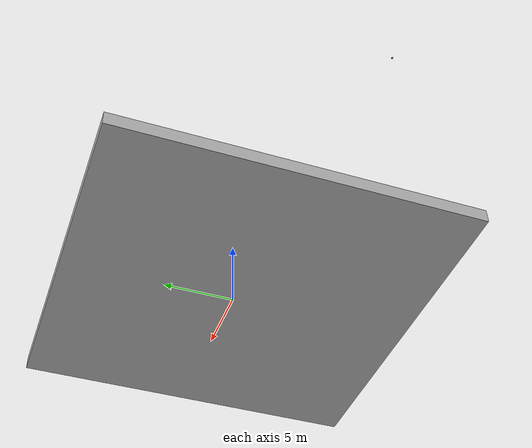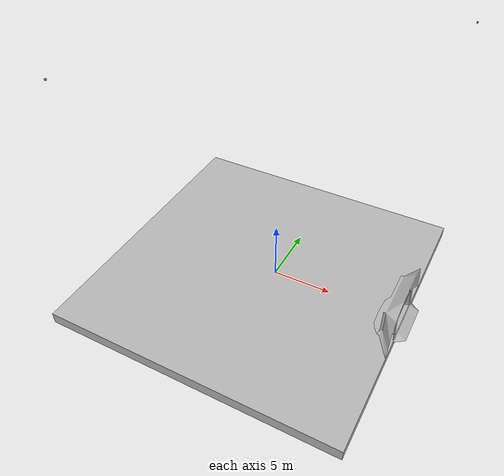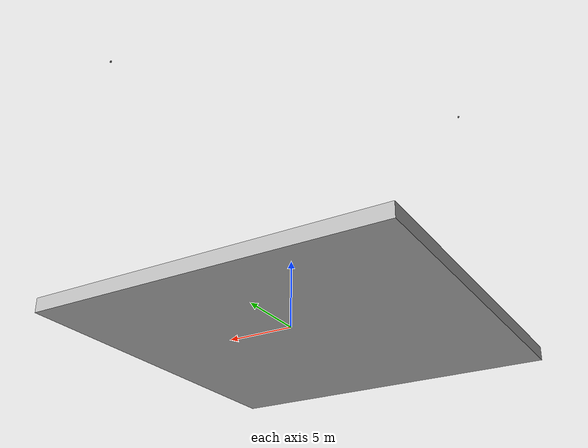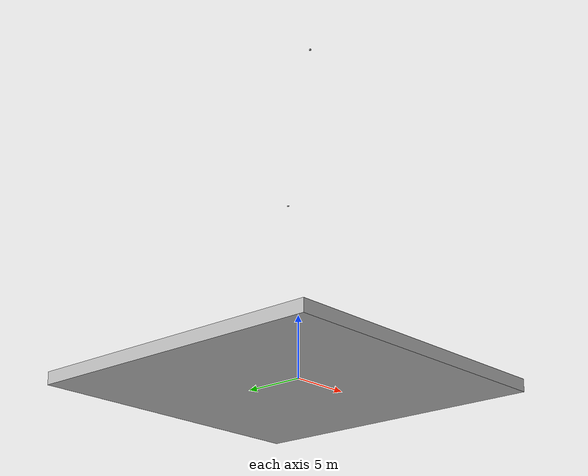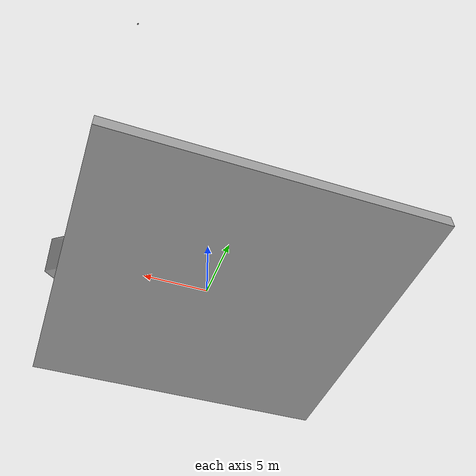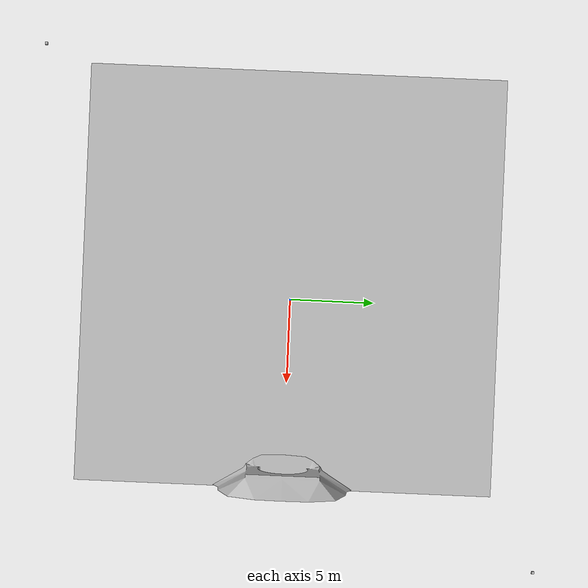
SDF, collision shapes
<?xml version="1.0"?>
<sdf version="1.6">
    <model name="subt_niosh_tunnel_staging_area">
        <static>true</static>
        <link name="link">
            <collision name="collision1">
                <pose>-10 -10 20 0 0 0</pose>
                <geometry>
                    <box>
                        <size>0.1 0.1 0.1</size>
                    </box>
                </geometry>
            </collision>
            <collision name="collision2">
                <pose>10 10 20 0 0 0</pose>
                <geometry>
                    <box>
                        <size>0.1 0.1 0.1</size>
                    </box>
                </geometry>
            </collision>
            <!-- The flat area where the robots starts -->
            <visual name="plane_visual">
                <pose>-1.181716 0 0 0 0 0</pose>
                <geometry>
                    <mesh>
                        <uri>meshes/Asphalt_Plane.DAE</uri>
                    </mesh>
                </geometry>
            </visual>
            <collision name="plane_collision">
                <pose>-1.181716 0 -0.502 0 0 0</pose>
                <geometry>
                    <box>
                        <size>25 25 1</size>
                    </box>
                </geometry>
            </collision>
            <!-- Entry to the tunnel -->
            <collision name="collision">
                <pose>17.5 0 -0.001 0 0 1.5707963267948966</pose>
                <geometry>
                    <mesh>
                        <uri>meshes/Entrance_NIOSH.dae</uri>
                    </mesh>
                </geometry>
            </collision>
            <visual name="visual">
                <pose>17.5 0 -0.001 0 0 1.5707963267948966</pose>
                <geometry>
                    <mesh>
                        <uri>meshes/Entrance_NIOSH.dae</uri>
                    </mesh>
                </geometry>
            </visual>
        </link>
    </model>
</sdf>
